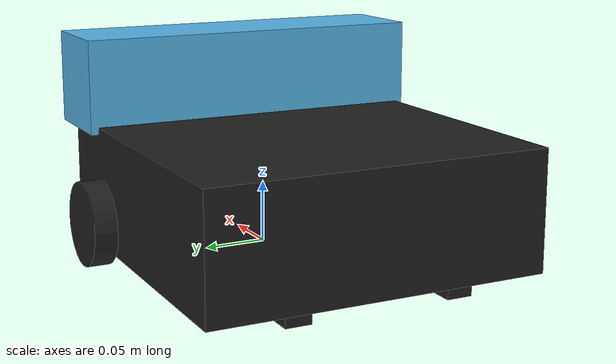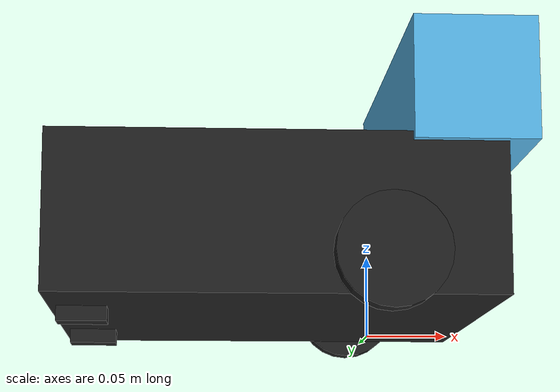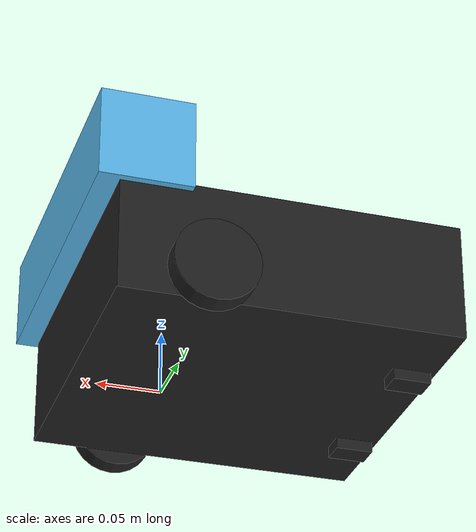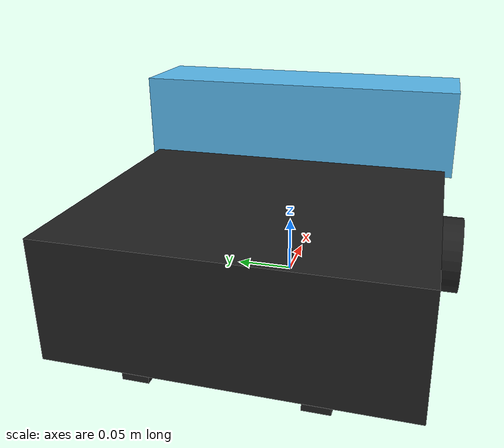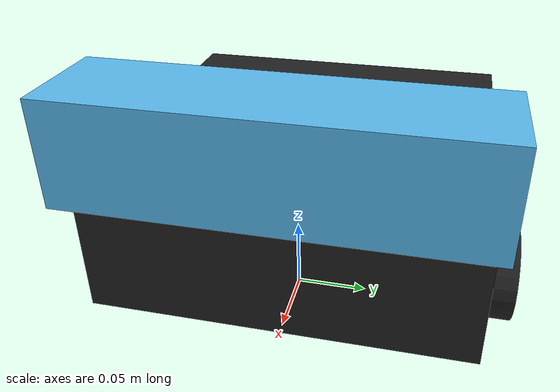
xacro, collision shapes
<?xml version="1.0" ?>
<robot name="turtlebot3_waffle_pi" xmlns:xacro="http://ros.org/wiki/xacro">
  <xacro:include filename="$(find turtlebot3_description)/urdf/common_properties.xacro"/>
  <xacro:include filename="$(find turtlebot3_description)/urdf/turtlebot3_waffle_pi.gazebo.xacro"/>

  <link name="base_footprint"/>

  <joint name="base_joint" type="fixed">
    <parent link="base_footprint"/>
    <child link="base_link" />
    <origin xyz="0 0 0.010" rpy="0 0 0"/>
  </joint>

  <link name="base_link">
    <visual>
      <origin xyz="-0.064 0 0.0" rpy="0 0 0"/>
      <geometry>
        <mesh filename="package://turtlebot3_description/meshes/bases/waffle_pi_base.stl" scale="0.001 0.001 0.001"/>
      </geometry>
      <material name="light_black"/>
    </visual>

    <collision>
      <origin xyz="-0.064 0 0.047" rpy="0 0 0"/>
      <geometry>
        <box size="0.266 0.266 0.094"/>
      </geometry>
    </collision>

    <inertial>
      <origin xyz="0 0 0" rpy="0 0 0"/>
      <mass value="1.3729096e+00"/>
      <inertia ixx="8.7002718e-03" ixy="-4.7576583e-05" ixz="1.1160499e-04"
               iyy="8.6195418e-03" iyz="-3.5422299e-06"
               izz="1.4612727e-02" />
    </inertial>
  </link>

  <joint name="wheel_left_joint" type="continuous">
    <parent link="base_link"/>
    <child link="wheel_left_link"/>
    <origin xyz="0.0 0.144 0.023" rpy="-1.57 0 0"/>
    <axis xyz="0 0 1"/>
  </joint>

  <link name="wheel_left_link">
    <visual>
      <origin xyz="0 0 0" rpy="1.57 0 0"/>
      <geometry>
        <mesh filename="package://turtlebot3_description/meshes/wheels/left_tire.stl" scale="0.001 0.001 0.001"/>
      </geometry>
      <material name="dark"/>
    </visual>

    <collision>
      <origin xyz="0 0 0" rpy="0 0 0"/>
      <geometry>
        <cylinder length="0.018" radius="0.033"/>
      </geometry>
    </collision>

    <inertial>
      <origin xyz="0 0 0" />
      <mass value="2.8498940e-02" />
      <inertia ixx="1.1175580e-05" ixy="-4.2369783e-11" ixz="-5.9381719e-09"
               iyy="1.1192413e-05" iyz="-1.4400107e-11"
               izz="2.0712558e-05" />
      </inertial>
  </link>

  <joint name="wheel_right_joint" type="continuous">
    <parent link="base_link"/>
    <child link="wheel_right_link"/>
    <origin xyz="0.0 -0.144 0.023" rpy="-1.57 0 0"/>
    <axis xyz="0 0 1"/>
  </joint>

  <link name="wheel_right_link">
    <visual>
      <origin xyz="0 0 0" rpy="1.57 0 0"/>
      <geometry>
        <mesh filename="package://turtlebot3_description/meshes/wheels/right_tire.stl" scale="0.001 0.001 0.001"/>
      </geometry>
      <material name="dark"/>
    </visual>

    <collision>
      <origin xyz="0 0 0" rpy="0 0 0"/>
      <geometry>
        <cylinder length="0.018" radius="0.033"/>
      </geometry>
    </collision>

    <inertial>
      <origin xyz="0 0 0" />
      <mass value="2.8498940e-02" />
      <inertia ixx="1.1175580e-05" ixy="-4.2369783e-11" ixz="-5.9381719e-09"
               iyy="1.1192413e-05" iyz="-1.4400107e-11"
               izz="2.0712558e-05" />
      </inertial>
  </link>

  <joint name="caster_back_right_joint" type="fixed">
    <parent link="base_link"/>
    <child link="caster_back_right_link"/>
    <origin xyz="-0.177 -0.064 -0.004" rpy="-1.57 0 0"/>
  </joint>

  <link name="caster_back_right_link">
    <collision>
      <origin xyz="0 0.001 0" rpy="0 0 0"/>
      <geometry>
        <box size="0.030 0.009 0.020"/>
      </geometry>
    </collision>

    <inertial>
      <origin xyz="0 0 0" />
      <mass value="0.005" />
      <inertia ixx="0.001" ixy="0.0" ixz="0.0"
               iyy="0.001" iyz="0.0"
               izz="0.001" />
    </inertial>
  </link>

  <joint name="caster_back_left_joint" type="fixed">
    <parent link="base_link"/>
    <child link="caster_back_left_link"/>
    <origin xyz="-0.177 0.064 -0.004" rpy="-1.57 0 0"/>
  </joint>

  <link name="caster_back_left_link">
    <collision>
      <origin xyz="0 0.001 0" rpy="0 0 0"/>
      <geometry>
        <box size="0.030 0.009 0.020"/>
      </geometry>
    </collision>

    <inertial>
      <origin xyz="0 0 0" />
      <mass value="0.005" />
      <inertia ixx="0.001" ixy="0.0" ixz="0.0"
               iyy="0.001" iyz="0.0"
               izz="0.001" />
    </inertial>
  </link>

  <joint name="imu_joint" type="fixed">
    <parent link="base_link"/>
    <child link="imu_link"/>
    <origin xyz="0.0 0 0.068" rpy="0 0 0"/>
  </joint>

  <link name="imu_link"/>

  <joint name="kinect_joint" type="fixed">
    <!--origin xyz="0.05 0 0.1252" rpy="0 0 0"/-->
    <origin xyz="0.073 -0.0163 0.141" rpy="0 0 0"/>
    <parent link="base_link"/>
    <child link="kinect_frame"/>
  </joint>
  <link name="kinect_frame"/>

  <joint name="camera_rgb_optical_joint" type="fixed">
    <origin xyz="0 0 0" rpy="-1.57 0 -1.57"/>
    <parent link="kinect_frame"/>
    <child link="camera_rgb_optical_frame"/>
  </joint>
  <link name="camera_rgb_optical_frame"/>

  <joint name="camera_joint" type="fixed">
    <origin xyz="-0.023 0.0163 -0.0158" rpy="0 0 0"/>
    <parent link="kinect_frame"/>
    <child link="camera_link"/>
  </joint>

  <link name="camera_link">
    <visual>
      <origin xyz="0 0 0" rpy="0 0 1.57"/>
      <geometry>
        <mesh filename="package://turtlebot3_description/meshes/sensors/kinect.dae"/>
      </geometry>
    </visual>
    <collision>
      <origin xyz="0.0 0.0 0.0" rpy="0 0 0"/>
      <geometry>
        <box size="0.07271 0.27794 0.073"/>
      </geometry>
    </collision>
    <inertial>
      <mass value="0.564" />
      <origin xyz="0 0 0" />
      <inertia ixx="0.003881243" ixy="0.0" ixz="0.0"
               iyy="0.000498940" iyz="0.0"
               izz="0.003879257" />
    </inertial>
  </link>

  <joint name="camera_depth_joint" type="fixed">
    <origin xyz="0 0.03 0" rpy="0 0 0" />
    <parent link="kinect_frame" />
    <child link="camera_depth_frame" />
  </joint>
  <link name="camera_depth_frame"/>

  <joint name="camera_depth_optical_joint" type="fixed">
    <origin xyz="0 0 0" rpy="-1.57 0 -1.57" />
    <parent link="camera_depth_frame" />
    <child link="camera_depth_optical_frame" />
  </joint>
  <link name="camera_depth_optical_frame"/>

</robot>
